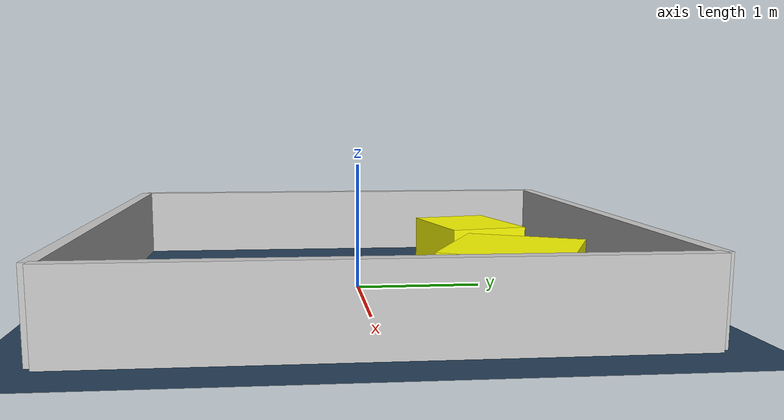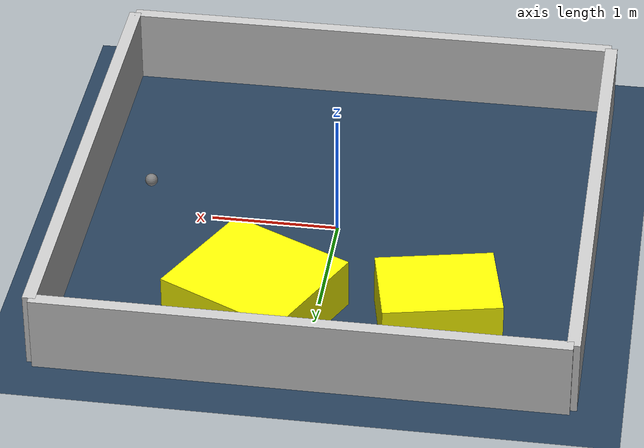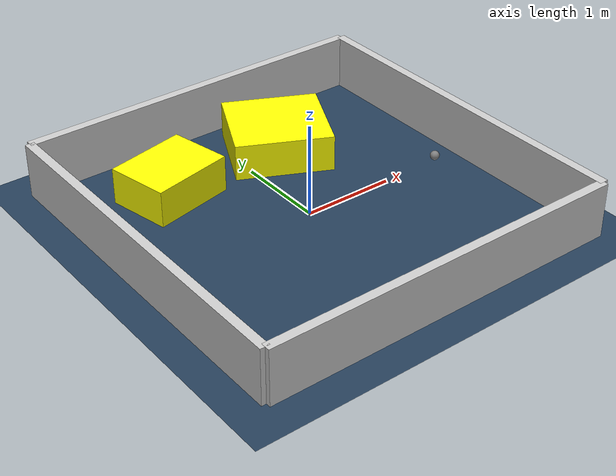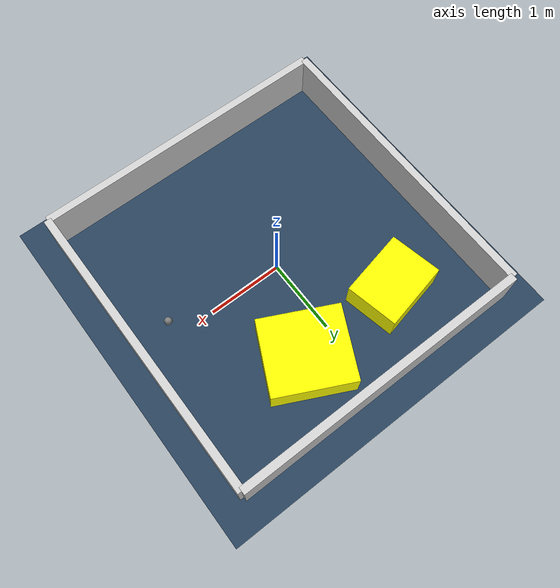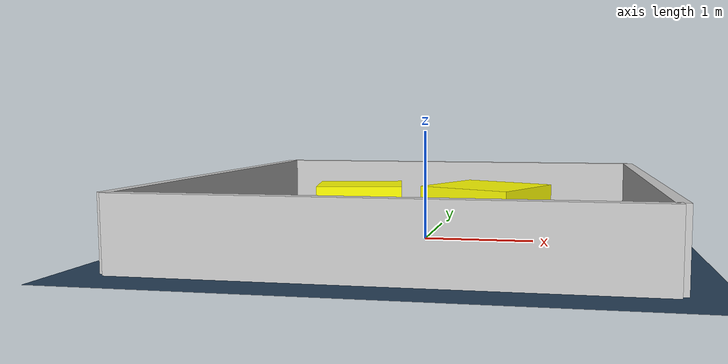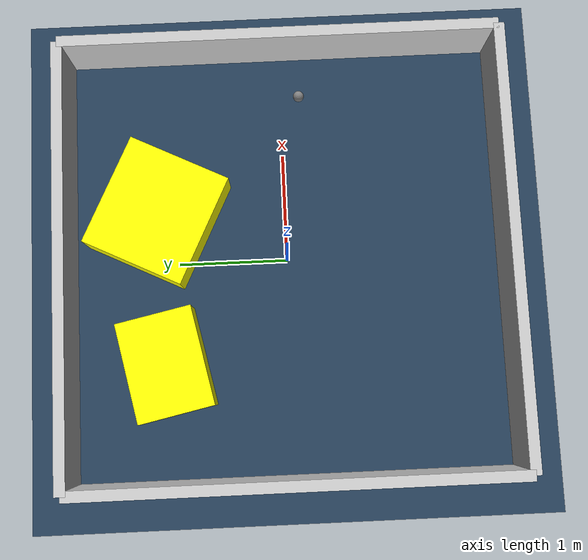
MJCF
<?xml version="1.0" ?>
<mujoco model="generated_environment">
  <option timestep="0.01" integrator="RK4" cone="elliptic"/>
  <default>
    <geom density="1"/>
  </default>
  <asset>
    <texture builtin="gradient" height="3072" rgb1="0.3 0.5 0.7" rgb2="0 0 0" type="skybox" width="512"/>
    <texture builtin="checker" height="300" mark="edge" markrgb="0.8 0.8 0.8" name="groundplane" rgb1="0.2 0.3 0.4" rgb2="0.1 0.2 0.3" type="2d" width="300"/>
    <material name="groundplane" reflectance="0.2" texrepeat="5 5" texture="groundplane" texuniform="true"/>
    <material name="robot" rgba="0.0 1.0 0.0 1"/>
  </asset>
  <worldbody>
    <light dir="0 0 -1" directional="true" pos="0 0 1.5"/>
    <geom condim="4" friction="1.0 0.005 0.001" material="groundplane" name="floor" size="0 0 0.05" type="plane"/>
    <body name="walls">
      <geom name="wall_1" condim="4" pos="-2.0 0.0 0.3" rgba="0.800000011920929 0.800000011920929 0.800000011920929 1.0" size="0.05 2.0 0.3" type="box"/>
      <geom name="wall_2" condim="4" pos="2.0 0.0 0.3" rgba="0.800000011920929 0.800000011920929 0.800000011920929 1.0" size="0.05 2.0 0.3" type="box"/>
      <geom name="wall_3" condim="4" pos="0.0 -2.0 0.3" rgba="0.800000011920929 0.800000011920929 0.800000011920929 1.0" size="2.0 0.05 0.3" type="box"/>
      <geom name="wall_4" condim="4" pos="0.0 2.0 0.3" rgba="0.800000011920929 0.800000011920929 0.800000011920929 1.0" size="2.0 0.05 0.3" type="box"/>
    </body>
    <body name="robot">
      <joint name="joint_x" type="slide" pos="0 0 0" axis="1 0 0"/>
      <joint name="joint_y" type="slide" pos="0 0 0" axis="0 1 0"/>
      <geom name="robot" type="sphere" pos="1.5205358944665717 -0.16942199307207573 0.2" size="0.05" mass="5." friction="1.0 0.005 0.0001" condim="4"/>
      <site name="sensor_ball"/>
    </body>
    <body name="obstacle_1_movable">
      <geom name="obstacle_1_movable" condim="4" pos="-0.926304951065508 1.1222418520782336 0.2" euler="0 0 102.1344830478689" friction="1.0 0.005 0.001" rgba="1 1 0 1" size="0.346160297553412 0.4528358583720613 0.2" type="box" mass="0.1"/>
      <joint type="free"/>
    </body>
    <body name="obstacle_2_movable">
      <geom name="obstacle_2_movable" condim="4" pos="0.4591266028361327 1.1700486462173574 0.2" euler="0 0 63.99328080931353" friction="1.0 0.005 0.001" rgba="1 1 0 1" size="0.48545330281429677 0.5255943577176594 0.2" type="box" mass="0.1"/>
      <joint type="free"/>
    </body>
  </worldbody>
  <actuator>
    <motor name="actuator_x" joint="joint_x" gear="1" ctrlrange="-1 1"/>
    <motor name="actuator_y" joint="joint_y" gear="1" ctrlrange="-1 1"/>
  </actuator>
</mujoco>
